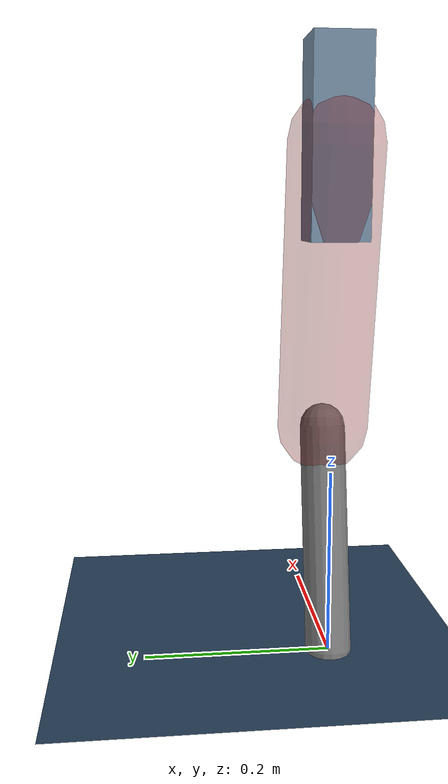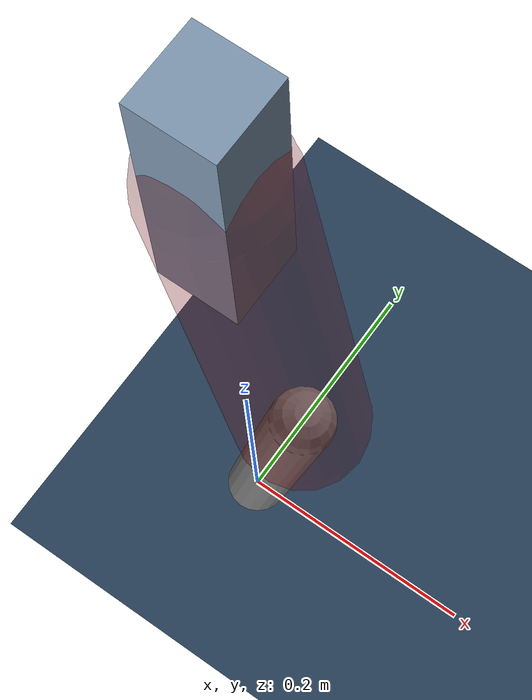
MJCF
<mujoco model="Hopper2D">
	<compiler inertiafromgeom="true" angle="radian" />
	<option timestep="0.001" integrator="implicit" cone="elliptic" solver="Newton" tolerance="1e-10" />

	<default>
		<geom contype="1" conaffinity="1" condim="3" friction="2 0.005 0.0001" solref="0.005 1" />
		<joint limited="true" damping="0.1" />
	</default>

	<asset>
		<texture name="skybox" type="skybox" builtin="gradient" rgb1=".4 .6 .8" rgb2="0 0 0" width="800" height="800" />
		<texture name="grid" type="2d" builtin="checker" rgb1=".1 .2 .3" rgb2=".2 .3 .4" width="300" height="300" mark="edge" markrgb=".2 .3 .4" />
		<material name="ground" texture="grid" texrepeat="1 1" texuniform="true" reflectance="0.1" />
		<material name="leg" rgba="0.5 0.6 0.7 1" />
	</asset>

	<worldbody>

		<geom name="floor" type="plane" size="5 5 0.25" material="ground" />

		<light directional="false" diffuse="0.8 0.8 0.8" specular="0.3 0.3 0.3" pos="0 0 2" dir="0 0 -1" />
		<light mode="targetbodycom" target="base" directional="false" diffuse="0.8 0.8 0.8" specular="0.3 0.3 0.3" pos="0 0 2" dir="0 0 -1" />

		<camera name="fixed" pos="0 -2 1" xyaxes="1 0 0 0 0 1" />
		<camera name="tracking" mode="trackcom" pos="0 -3 1" />

		<body name="root" pos="0 0 0.5443354488058375">
			<joint name="slide_x" type="slide" axis="1 0 0" range="-100 100" />
			<joint name="slide_z" type="slide" axis="0 0 1" range="0 10" />

			<body name="base" pos="0 0 0">
				<geom name="torso" type="box" size="0.03 0.03 0.1" mass="3.1319999999999997" material="leg" />

				<body name="link1" pos="0 0 0" euler="0 1.4014922331403135 0">
					<joint type="hinge" axis="0 -1 0" pos="0 0 0" name="hinge1" limited="true" range="-3.14 3.14" stiffness="0" damping="0.1" />
					<geom name="thigh" type="capsule" fromto="0 0 0 0.3089145312735767 0 0" size="0.05" rgba="0.5 0 0 0.3" mass="1.0129606875660149" />

					<body name="link2" pos="0.3089145312735767 0 0" euler="0 0.383015855302084 0">
						<joint type="hinge" axis="0 -1 0" pos="0 0 0" name="hinge2" limited="true" range="-3.14 3.14" stiffness="0" damping="0.1" />
						<geom name="shank" type="capsule" fromto="0 0 0 0.2454209175322608 0 0" size="0.025" mass="0.43873673402580865" />

					</body>
				</body>
			</body>
		</body>
	</worldbody>

	<actuator>
		<motor name="torque1" joint="hinge1" ctrlrange="-102.76447169788902 102.76447169788902" ctrllimited="true" gear="1" />
		<motor name="torque2" joint="hinge2" ctrlrange="-163.69499708380036 163.69499708380036" ctrllimited="true" gear="1" />
	</actuator>
</mujoco>
